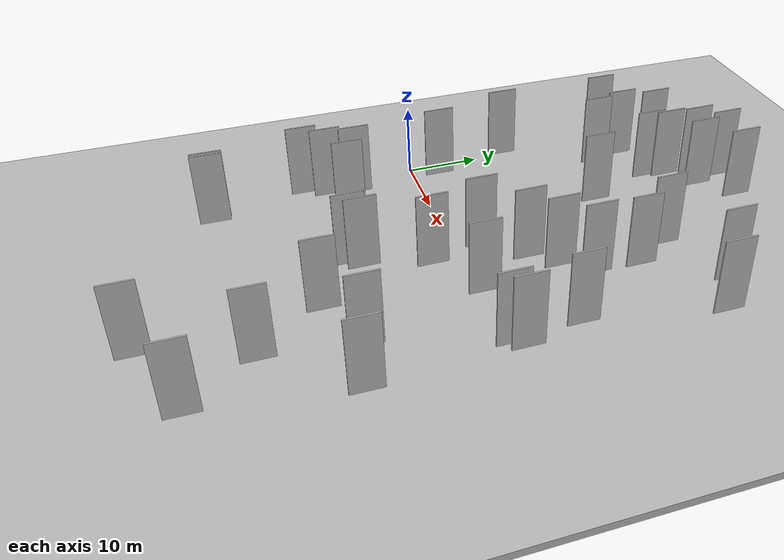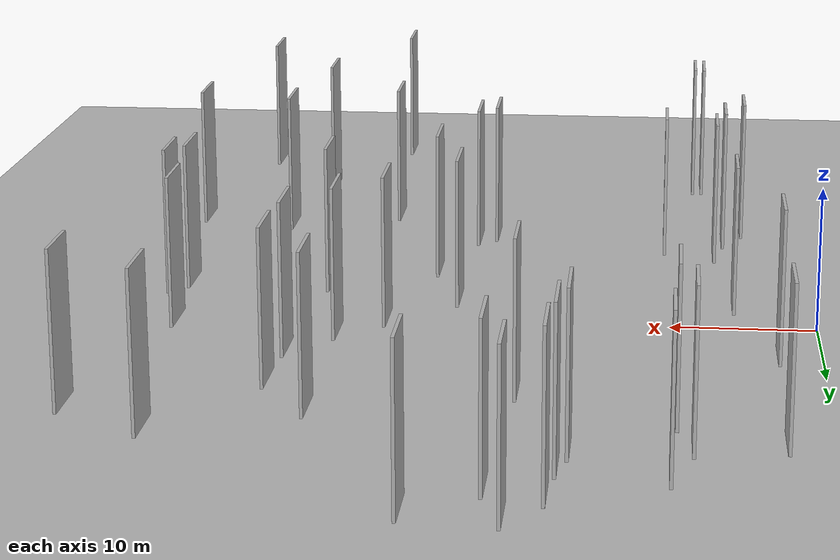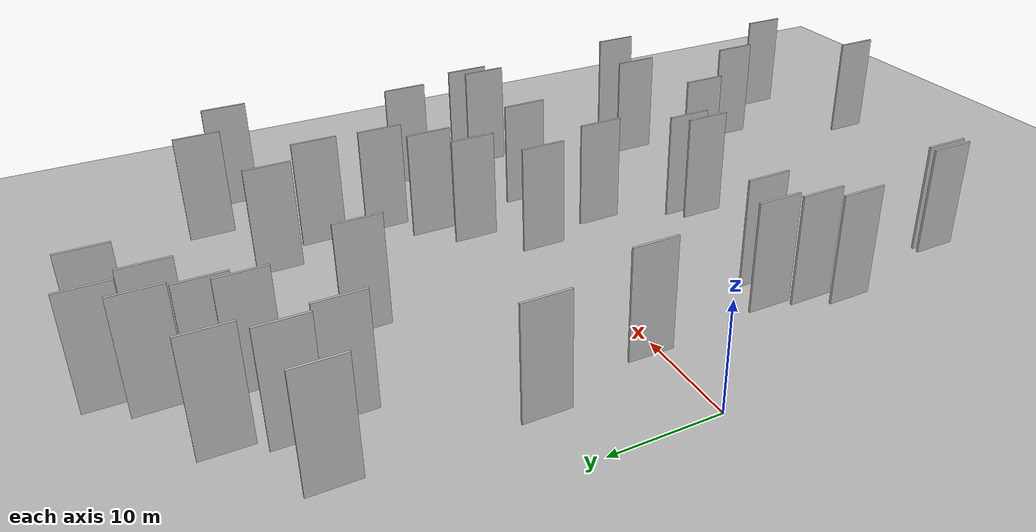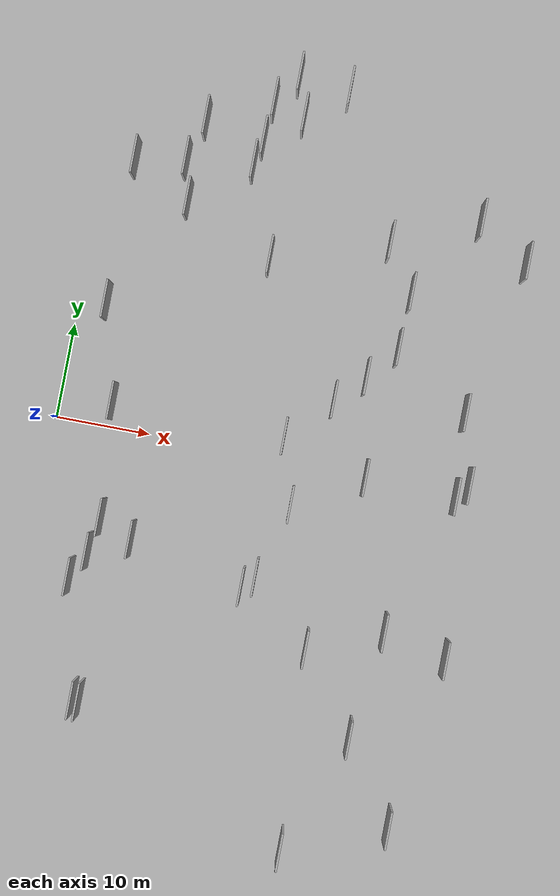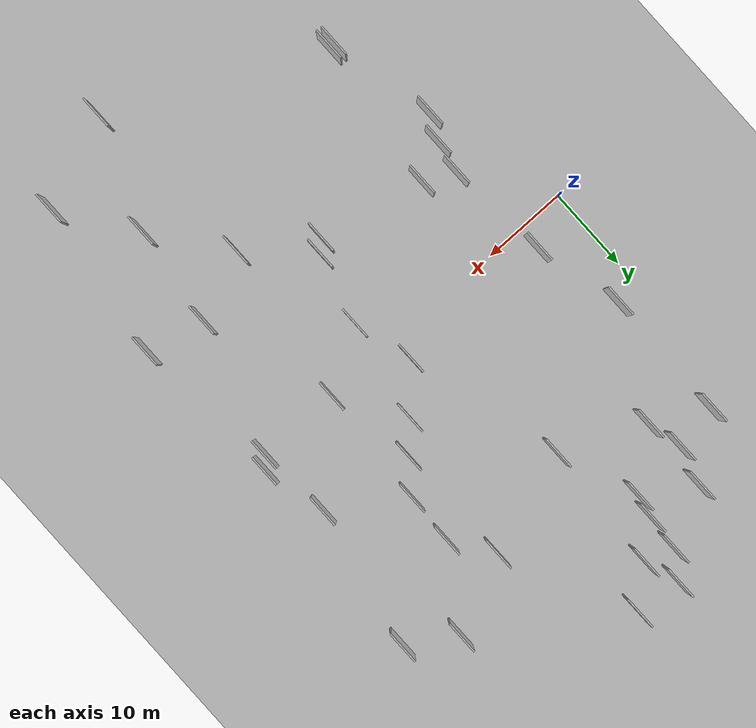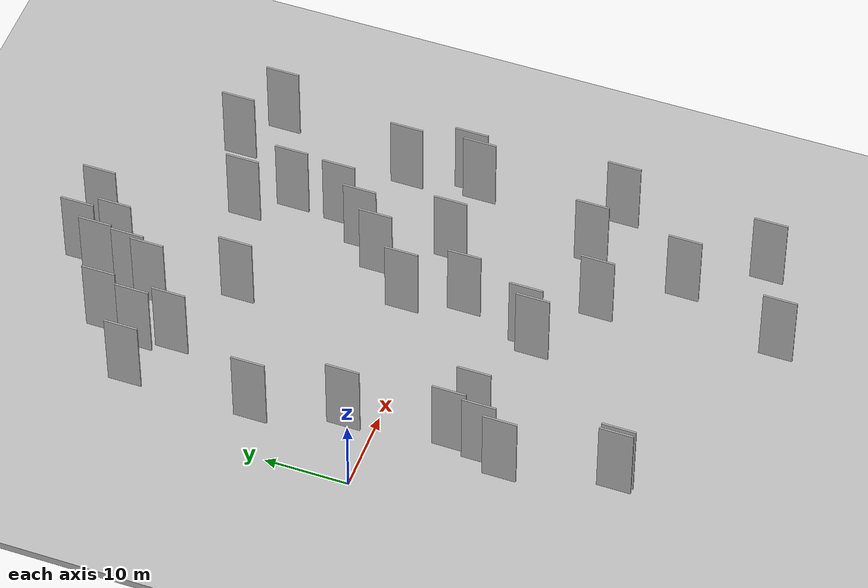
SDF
<?xml version="1.0" encoding="utf-8"?>

<sdf version="1.6">

   <world name="default">

      <gui fullscreen="0">

         <camera name="user_camera">

            <pose>-15 0 4.57585 0 0 0</pose>

            <view_controller>orbit</view_controller>

         </camera>

      </gui>

      <scene>

         <sky>

           <clouds>

             <speed>12</speed>

           </clouds>

         </sky>

         <ambient>0.4 0.4 0.4 1</ambient>

         <background>0.7 0.7 0.7 1</background>

         <shadows>1</shadows>

      </scene>

      <gravity>0 0 -9.8066</gravity>

      <magnetic_field>6e-06 2.3e-05 -4.2e-05</magnetic_field>

      <physics default="0" name="default_physics" type="ode">

         <ode>

            <solver>

               <type>quick</type>

               <iters>10</iters>

               <sor>1.0</sor>

               <use_dynamic_moi_rescaling>0</use_dynamic_moi_rescaling>

            </solver>

            <constraints>

               <cfm>0</cfm>

               <erp>0.2</erp>

               <contact_max_correcting_vel>100</contact_max_correcting_vel>

               <contact_surface_layer>0.001</contact_surface_layer>

            </constraints>

         </ode>

         <max_step_size>0.004</max_step_size>

         <real_time_factor>1</real_time_factor>

         <real_time_update_rate>250</real_time_update_rate>

      </physics>

      <light name="sun" type="directional">

         <cast_shadows>1</cast_shadows>

         <pose>0 0 10 0 0 0</pose>

         <diffuse>0.8 0.8 0.8 1</diffuse>

         <specular>0.2 0.2 0.2 1</specular>

         <attenuation>

            <range>1000</range>

            <constant>0.9</constant>

            <linear>0.01</linear>

            <quadratic>0.001</quadratic>

         </attenuation>

         <direction>-0.5 0.1 -0.9</direction>

      </light>

      <include>

         <name>ground_plane_1</name>

         <uri>model://HANNAS_ground_plane</uri>

         <pose>0 0 0  0 0 0</pose>

      </include>

      <include>

         <name>ground_plane_2</name>

         <uri>model://HANNAS_ground_plane</uri>

         <pose>100 0 0  0 0 0</pose>

      </include>

      <model name="HANNAS_wall_1">

         <static>1</static>

         <pose frame="">42.2858 8.4306 2.5 0.000000 0.000000 1.570796</pose>

         <link name="link">

            <pose frame="">0 0 5.00 0 0 0</pose>

            <collision name="collision">

               <geometry>

                  <box>

                     <size>4.00 0.2 10.00</size>

                  </box>

               </geometry>

               <max_contacts>10</max_contacts>

               <surface>

                  <contact>

                     <ode/>

                  </contact>

                  <bounce/>

                  <friction>

                     <torsional>

                        <ode/>

                     </torsional>

                     <ode/>

                  </friction>

               </surface>

            </collision>

            <visual name="visual">

               <cast_shadows>0</cast_shadows>

               <geometry>

                  <box>

                     <size>4.00 0.2 10.00</size>

                  </box>

               </geometry>

               <material>

                  <script>

                     <uri>model://HANNAS_wall/materials/scripts</uri>

                     <uri>model://HANNAS_wall/materials/textures</uri>

                     <name>vrc/HANNAS_wall</name>

                  </script>

               </material>

            </visual>

            <self_collide>0</self_collide>

            <enable_wind>0</enable_wind>

            <kinematic>0</kinematic>

         </link>

      </model>

      <model name="HANNAS_wall_2">

         <static>1</static>

         <pose frame="">9.9759 33.6062 2.5 0.000000 0.000000 1.570796</pose>

         <link name="link">

            <pose frame="">0 0 5.00 0 0 0</pose>

            <collision name="collision">

               <geometry>

                  <box>

                     <size>4.00 0.2 10.00</size>

                  </box>

               </geometry>

               <max_contacts>10</max_contacts>

               <surface>

                  <contact>

                     <ode/>

                  </contact>

                  <bounce/>

                  <friction>

                     <torsional>

                        <ode/>

                     </torsional>

                     <ode/>

                  </friction>

               </surface>

            </collision>

            <visual name="visual">

               <cast_shadows>0</cast_shadows>

               <geometry>

                  <box>

                     <size>4.00 0.2 10.00</size>

                  </box>

               </geometry>

               <material>

                  <script>

                     <uri>model://HANNAS_wall/materials/scripts</uri>

                     <uri>model://HANNAS_wall/materials/textures</uri>

                     <name>vrc/HANNAS_wall</name>

                  </script>

               </material>

            </visual>

            <self_collide>0</self_collide>

            <enable_wind>0</enable_wind>

            <kinematic>0</kinematic>

         </link>

      </model>

      <model name="HANNAS_wall_3">

         <static>1</static>

         <pose frame="">7.5965 -28.5167 2.5 0.000000 0.000000 1.570796</pose>

         <link name="link">

            <pose frame="">0 0 5.00 0 0 0</pose>

            <collision name="collision">

               <geometry>

                  <box>

                     <size>4.00 0.2 10.00</size>

                  </box>

               </geometry>

               <max_contacts>10</max_contacts>

               <surface>

                  <contact>

                     <ode/>

                  </contact>

                  <bounce/>

                  <friction>

                     <torsional>

                        <ode/>

                     </torsional>

                     <ode/>

                  </friction>

               </surface>

            </collision>

            <visual name="visual">

               <cast_shadows>0</cast_shadows>

               <geometry>

                  <box>

                     <size>4.00 0.2 10.00</size>

                  </box>

               </geometry>

               <material>

                  <script>

                     <uri>model://HANNAS_wall/materials/scripts</uri>

                     <uri>model://HANNAS_wall/materials/textures</uri>

                     <name>vrc/HANNAS_wall</name>

                  </script>

               </material>

            </visual>

            <self_collide>0</self_collide>

            <enable_wind>0</enable_wind>

            <kinematic>0</kinematic>

         </link>

      </model>

      <model name="HANNAS_wall_4">

         <static>1</static>

         <pose frame="">30.5016 -18.7992 2.5 0.000000 0.000000 1.570796</pose>

         <link name="link">

            <pose frame="">0 0 5.00 0 0 0</pose>

            <collision name="collision">

               <geometry>

                  <box>

                     <size>4.00 0.2 10.00</size>

                  </box>

               </geometry>

               <max_contacts>10</max_contacts>

               <surface>

                  <contact>

                     <ode/>

                  </contact>

                  <bounce/>

                  <friction>

                     <torsional>

                        <ode/>

                     </torsional>

                     <ode/>

                  </friction>

               </surface>

            </collision>

            <visual name="visual">

               <cast_shadows>0</cast_shadows>

               <geometry>

                  <box>

                     <size>4.00 0.2 10.00</size>

                  </box>

               </geometry>

               <material>

                  <script>

                     <uri>model://HANNAS_wall/materials/scripts</uri>

                     <uri>model://HANNAS_wall/materials/textures</uri>

                     <name>vrc/HANNAS_wall</name>

                  </script>

               </material>

            </visual>

            <self_collide>0</self_collide>

            <enable_wind>0</enable_wind>

            <kinematic>0</kinematic>

         </link>

      </model>

      <model name="HANNAS_wall_5">

         <static>1</static>

         <pose frame="">3.4285 28.2088 2.5 0.000000 0.000000 1.570796</pose>

         <link name="link">

            <pose frame="">0 0 5.00 0 0 0</pose>

            <collision name="collision">

               <geometry>

                  <box>

                     <size>4.00 0.2 10.00</size>

                  </box>

               </geometry>

               <max_contacts>10</max_contacts>

               <surface>

                  <contact>

                     <ode/>

                  </contact>

                  <bounce/>

                  <friction>

                     <torsional>

                        <ode/>

                     </torsional>

                     <ode/>

                  </friction>

               </surface>

            </collision>

            <visual name="visual">

               <cast_shadows>0</cast_shadows>

               <geometry>

                  <box>

                     <size>4.00 0.2 10.00</size>

                  </box>

               </geometry>

               <material>

                  <script>

                     <uri>model://HANNAS_wall/materials/scripts</uri>

                     <uri>model://HANNAS_wall/materials/textures</uri>

                     <name>vrc/HANNAS_wall</name>

                  </script>

               </material>

            </visual>

            <self_collide>0</self_collide>

            <enable_wind>0</enable_wind>

            <kinematic>0</kinematic>

         </link>

      </model>

      <model name="HANNAS_wall_6">

         <static>1</static>

         <pose frame="">16.2536 32.6822 2.5 0.000000 0.000000 1.570796</pose>

         <link name="link">

            <pose frame="">0 0 5.00 0 0 0</pose>

            <collision name="collision">

               <geometry>

                  <box>

                     <size>4.00 0.2 10.00</size>

                  </box>

               </geometry>

               <max_contacts>10</max_contacts>

               <surface>

                  <contact>

                     <ode/>

                  </contact>

                  <bounce/>

                  <friction>

                     <torsional>

                        <ode/>

                     </torsional>

                     <ode/>

                  </friction>

               </surface>

            </collision>

            <visual name="visual">

               <cast_shadows>0</cast_shadows>

               <geometry>

                  <box>

                     <size>4.00 0.2 10.00</size>

                  </box>

               </geometry>

               <material>

                  <script>

                     <uri>model://HANNAS_wall/materials/scripts</uri>

                     <uri>model://HANNAS_wall/materials/textures</uri>

                     <name>vrc/HANNAS_wall</name>

                  </script>

               </material>

            </visual>

            <self_collide>0</self_collide>

            <enable_wind>0</enable_wind>

            <kinematic>0</kinematic>

         </link>

      </model>

      <model name="HANNAS_wall_7">

         <static>1</static>

         <pose frame="">22.7090 -13.7084 2.5 0.000000 0.000000 1.570796</pose>

         <link name="link">

            <pose frame="">0 0 5.00 0 0 0</pose>

            <collision name="collision">

               <geometry>

                  <box>

                     <size>4.00 0.2 10.00</size>

                  </box>

               </geometry>

               <max_contacts>10</max_contacts>

               <surface>

                  <contact>

                     <ode/>

                  </contact>

                  <bounce/>

                  <friction>

                     <torsional>

                        <ode/>

                     </torsional>

                     <ode/>

                  </friction>

               </surface>

            </collision>

            <visual name="visual">

               <cast_shadows>0</cast_shadows>

               <geometry>

                  <box>

                     <size>4.00 0.2 10.00</size>

                  </box>

               </geometry>

               <material>

                  <script>

                     <uri>model://HANNAS_wall/materials/scripts</uri>

                     <uri>model://HANNAS_wall/materials/textures</uri>

                     <name>vrc/HANNAS_wall</name>

                  </script>

               </material>

            </visual>

            <self_collide>0</self_collide>

            <enable_wind>0</enable_wind>

            <kinematic>0</kinematic>

         </link>

      </model>

      <model name="HANNAS_wall_8">

         <static>1</static>

         <pose frame="">45.6253 25.0832 2.5 0.000000 0.000000 1.570796</pose>

         <link name="link">

            <pose frame="">0 0 5.00 0 0 0</pose>

            <collision name="collision">

               <geometry>

                  <box>

                     <size>4.00 0.2 10.00</size>

                  </box>

               </geometry>

               <max_contacts>10</max_contacts>

               <surface>

                  <contact>

                     <ode/>

                  </contact>

                  <bounce/>

                  <friction>

                     <torsional>

                        <ode/>

                     </torsional>

                     <ode/>

                  </friction>

               </surface>

            </collision>

            <visual name="visual">

               <cast_shadows>0</cast_shadows>

               <geometry>

                  <box>

                     <size>4.00 0.2 10.00</size>

                  </box>

               </geometry>

               <material>

                  <script>

                     <uri>model://HANNAS_wall/materials/scripts</uri>

                     <uri>model://HANNAS_wall/materials/textures</uri>

                     <name>vrc/HANNAS_wall</name>

                  </script>

               </material>

            </visual>

            <self_collide>0</self_collide>

            <enable_wind>0</enable_wind>

            <kinematic>0</kinematic>

         </link>

      </model>

      <model name="HANNAS_wall_9">

         <static>1</static>

         <pose frame="">15.6876 30.0707 2.5 0.000000 0.000000 1.570796</pose>

         <link name="link">

            <pose frame="">0 0 5.00 0 0 0</pose>

            <collision name="collision">

               <geometry>

                  <box>

                     <size>4.00 0.2 10.00</size>

                  </box>

               </geometry>

               <max_contacts>10</max_contacts>

               <surface>

                  <contact>

                     <ode/>

                  </contact>

                  <bounce/>

                  <friction>

                     <torsional>

                        <ode/>

                     </torsional>

                     <ode/>

                  </friction>

               </surface>

            </collision>

            <visual name="visual">

               <cast_shadows>0</cast_shadows>

               <geometry>

                  <box>

                     <size>4.00 0.2 10.00</size>

                  </box>

               </geometry>

               <material>

                  <script>

                     <uri>model://HANNAS_wall/materials/scripts</uri>

                     <uri>model://HANNAS_wall/materials/textures</uri>

                     <name>vrc/HANNAS_wall</name>

                  </script>

               </material>

            </visual>

            <self_collide>0</self_collide>

            <enable_wind>0</enable_wind>

            <kinematic>0</kinematic>

         </link>

      </model>

      <model name="HANNAS_wall_10">

         <static>1</static>

         <pose frame="">16.6272 36.7826 2.5 0.000000 0.000000 1.570796</pose>

         <link name="link">

            <pose frame="">0 0 5.00 0 0 0</pose>

            <collision name="collision">

               <geometry>

                  <box>

                     <size>4.00 0.2 10.00</size>

                  </box>

               </geometry>

               <max_contacts>10</max_contacts>

               <surface>

                  <contact>

                     <ode/>

                  </contact>

                  <bounce/>

                  <friction>

                     <torsional>

                        <ode/>

                     </torsional>

                     <ode/>

                  </friction>

               </surface>

            </collision>

            <visual name="visual">

               <cast_shadows>0</cast_shadows>

               <geometry>

                  <box>

                     <size>4.00 0.2 10.00</size>

                  </box>

               </geometry>

               <material>

                  <script>

                     <uri>model://HANNAS_wall/materials/scripts</uri>

                     <uri>model://HANNAS_wall/materials/textures</uri>

                     <name>vrc/HANNAS_wall</name>

                  </script>

               </material>

            </visual>

            <self_collide>0</self_collide>

            <enable_wind>0</enable_wind>

            <kinematic>0</kinematic>

         </link>

      </model>

      <model name="HANNAS_wall_11">

         <static>1</static>

         <pose frame="">42.9296 -0.3088 2.5 0.000000 0.000000 1.570796</pose>

         <link name="link">

            <pose frame="">0 0 5.00 0 0 0</pose>

            <collision name="collision">

               <geometry>

                  <box>

                     <size>4.00 0.2 10.00</size>

                  </box>

               </geometry>

               <max_contacts>10</max_contacts>

               <surface>

                  <contact>

                     <ode/>

                  </contact>

                  <bounce/>

                  <friction>

                     <torsional>

                        <ode/>

                     </torsional>

                     <ode/>

                  </friction>

               </surface>

            </collision>

            <visual name="visual">

               <cast_shadows>0</cast_shadows>

               <geometry>

                  <box>

                     <size>4.00 0.2 10.00</size>

                  </box>

               </geometry>

               <material>

                  <script>

                     <uri>model://HANNAS_wall/materials/scripts</uri>

                     <uri>model://HANNAS_wall/materials/textures</uri>

                     <name>vrc/HANNAS_wall</name>

                  </script>

               </material>

            </visual>

            <self_collide>0</self_collide>

            <enable_wind>0</enable_wind>

            <kinematic>0</kinematic>

         </link>

      </model>

      <model name="HANNAS_wall_12">

         <static>1</static>

         <pose frame="">24.1457 39.3764 2.5 0.000000 0.000000 1.570796</pose>

         <link name="link">

            <pose frame="">0 0 5.00 0 0 0</pose>

            <collision name="collision">

               <geometry>

                  <box>

                     <size>4.00 0.2 10.00</size>

                  </box>

               </geometry>

               <max_contacts>10</max_contacts>

               <surface>

                  <contact>

                     <ode/>

                  </contact>

                  <bounce/>

                  <friction>

                     <torsional>

                        <ode/>

                     </torsional>

                     <ode/>

                  </friction>

               </surface>

            </collision>

            <visual name="visual">

               <cast_shadows>0</cast_shadows>

               <geometry>

                  <box>

                     <size>4.00 0.2 10.00</size>

                  </box>

               </geometry>

               <material>

                  <script>

                     <uri>model://HANNAS_wall/materials/scripts</uri>

                     <uri>model://HANNAS_wall/materials/textures</uri>

                     <name>vrc/HANNAS_wall</name>

                  </script>

               </material>

            </visual>

            <self_collide>0</self_collide>

            <enable_wind>0</enable_wind>

            <kinematic>0</kinematic>

         </link>

      </model>

      <model name="HANNAS_wall_13">

         <static>1</static>

         <pose frame="">19.9792 35.7818 2.5 0.000000 0.000000 1.570796</pose>

         <link name="link">

            <pose frame="">0 0 5.00 0 0 0</pose>

            <collision name="collision">

               <geometry>

                  <box>

                     <size>4.00 0.2 10.00</size>

                  </box>

               </geometry>

               <max_contacts>10</max_contacts>

               <surface>

                  <contact>

                     <ode/>

                  </contact>

                  <bounce/>

                  <friction>

                     <torsional>

                        <ode/>

                     </torsional>

                     <ode/>

                  </friction>

               </surface>

            </collision>

            <visual name="visual">

               <cast_shadows>0</cast_shadows>

               <geometry>

                  <box>

                     <size>4.00 0.2 10.00</size>

                  </box>

               </geometry>

               <material>

                  <script>

                     <uri>model://HANNAS_wall/materials/scripts</uri>

                     <uri>model://HANNAS_wall/materials/textures</uri>

                     <name>vrc/HANNAS_wall</name>

                  </script>

               </material>

            </visual>

            <self_collide>0</self_collide>

            <enable_wind>0</enable_wind>

            <kinematic>0</kinematic>

         </link>

      </model>

      <model name="HANNAS_wall_14">

         <static>1</static>

         <pose frame="">6.9303 -9.3802 2.5 0.000000 0.000000 1.570796</pose>

         <link name="link">

            <pose frame="">0 0 5.00 0 0 0</pose>

            <collision name="collision">

               <geometry>

                  <box>

                     <size>4.00 0.2 10.00</size>

                  </box>

               </geometry>

               <max_contacts>10</max_contacts>

               <surface>

                  <contact>

                     <ode/>

                  </contact>

                  <bounce/>

                  <friction>

                     <torsional>

                        <ode/>

                     </torsional>

                     <ode/>

                  </friction>

               </surface>

            </collision>

            <visual name="visual">

               <cast_shadows>0</cast_shadows>

               <geometry>

                  <box>

                     <size>4.00 0.2 10.00</size>

                  </box>

               </geometry>

               <material>

                  <script>

                     <uri>model://HANNAS_wall/materials/scripts</uri>

                     <uri>model://HANNAS_wall/materials/textures</uri>

                     <name>vrc/HANNAS_wall</name>

                  </script>

               </material>

            </visual>

            <self_collide>0</self_collide>

            <enable_wind>0</enable_wind>

            <kinematic>0</kinematic>

         </link>

      </model>

      <model name="HANNAS_wall_15">

         <static>1</static>

         <pose frame="">34.4124 19.6951 2.5 0.000000 0.000000 1.570796</pose>

         <link name="link">

            <pose frame="">0 0 5.00 0 0 0</pose>

            <collision name="collision">

               <geometry>

                  <box>

                     <size>4.00 0.2 10.00</size>

                  </box>

               </geometry>

               <max_contacts>10</max_contacts>

               <surface>

                  <contact>

                     <ode/>

                  </contact>

                  <bounce/>

                  <friction>

                     <torsional>

                        <ode/>

                     </torsional>

                     <ode/>

                  </friction>

               </surface>

            </collision>

            <visual name="visual">

               <cast_shadows>0</cast_shadows>

               <geometry>

                  <box>

                     <size>4.00 0.2 10.00</size>

                  </box>

               </geometry>

               <material>

                  <script>

                     <uri>model://HANNAS_wall/materials/scripts</uri>

                     <uri>model://HANNAS_wall/materials/textures</uri>

                     <name>vrc/HANNAS_wall</name>

                  </script>

               </material>

            </visual>

            <self_collide>0</self_collide>

            <enable_wind>0</enable_wind>

            <kinematic>0</kinematic>

         </link>

      </model>

      <model name="HANNAS_wall_16">

         <static>1</static>

         <pose frame="">10.4565 -11.0433 2.5 0.000000 0.000000 1.570796</pose>

         <link name="link">

            <pose frame="">0 0 5.00 0 0 0</pose>

            <collision name="collision">

               <geometry>

                  <box>

                     <size>4.00 0.2 10.00</size>

                  </box>

               </geometry>

               <max_contacts>10</max_contacts>

               <surface>

                  <contact>

                     <ode/>

                  </contact>

                  <bounce/>

                  <friction>

                     <torsional>

                        <ode/>

                     </torsional>

                     <ode/>

                  </friction>

               </surface>

            </collision>

            <visual name="visual">

               <cast_shadows>0</cast_shadows>

               <geometry>

                  <box>

                     <size>4.00 0.2 10.00</size>

                  </box>

               </geometry>

               <material>

                  <script>

                     <uri>model://HANNAS_wall/materials/scripts</uri>

                     <uri>model://HANNAS_wall/materials/textures</uri>

                     <name>vrc/HANNAS_wall</name>

                  </script>

               </material>

            </visual>

            <self_collide>0</self_collide>

            <enable_wind>0</enable_wind>

            <kinematic>0</kinematic>

         </link>

      </model>

      <model name="HANNAS_wall_17">

         <static>1</static>

         <pose frame="">31.4384 10.2214 2.5 0.000000 0.000000 1.570796</pose>

         <link name="link">

            <pose frame="">0 0 5.00 0 0 0</pose>

            <collision name="collision">

               <geometry>

                  <box>

                     <size>4.00 0.2 10.00</size>

                  </box>

               </geometry>

               <max_contacts>10</max_contacts>

               <surface>

                  <contact>

                     <ode/>

                  </contact>

                  <bounce/>

                  <friction>

                     <torsional>

                        <ode/>

                     </torsional>

                     <ode/>

                  </friction>

               </surface>

            </collision>

            <visual name="visual">

               <cast_shadows>0</cast_shadows>

               <geometry>

                  <box>

                     <size>4.00 0.2 10.00</size>

                  </box>

               </geometry>

               <material>

                  <script>

                     <uri>model://HANNAS_wall/materials/scripts</uri>

                     <uri>model://HANNAS_wall/materials/textures</uri>

                     <name>vrc/HANNAS_wall</name>

                  </script>

               </material>

            </visual>

            <self_collide>0</self_collide>

            <enable_wind>0</enable_wind>

            <kinematic>0</kinematic>

         </link>

      </model>

      <model name="HANNAS_wall_18">

         <static>1</static>

         <pose frame="">34.1637 13.8082 2.5 0.000000 0.000000 1.570796</pose>

         <link name="link">

            <pose frame="">0 0 5.00 0 0 0</pose>

            <collision name="collision">

               <geometry>

                  <box>

                     <size>4.00 0.2 10.00</size>

                  </box>

               </geometry>

               <max_contacts>10</max_contacts>

               <surface>

                  <contact>

                     <ode/>

                  </contact>

                  <bounce/>

                  <friction>

                     <torsional>

                        <ode/>

                     </torsional>

                     <ode/>

                  </friction>

               </surface>

            </collision>

            <visual name="visual">

               <cast_shadows>0</cast_shadows>

               <geometry>

                  <box>

                     <size>4.00 0.2 10.00</size>

                  </box>

               </geometry>

               <material>

                  <script>

                     <uri>model://HANNAS_wall/materials/scripts</uri>

                     <uri>model://HANNAS_wall/materials/textures</uri>

                     <name>vrc/HANNAS_wall</name>

                  </script>

               </material>

            </visual>

            <self_collide>0</self_collide>

            <enable_wind>0</enable_wind>

            <kinematic>0</kinematic>

         </link>

      </model>

      <model name="HANNAS_wall_19">

         <static>1</static>

         <pose frame="">4.8445 -16.0190 2.5 0.000000 0.000000 1.570796</pose>

         <link name="link">

            <pose frame="">0 0 5.00 0 0 0</pose>

            <collision name="collision">

               <geometry>

                  <box>

                     <size>4.00 0.2 10.00</size>

                  </box>

               </geometry>

               <max_contacts>10</max_contacts>

               <surface>

                  <contact>

                     <ode/>

                  </contact>

                  <bounce/>

                  <friction>

                     <torsional>

                        <ode/>

                     </torsional>

                     <ode/>

                  </friction>

               </surface>

            </collision>

            <visual name="visual">

               <cast_shadows>0</cast_shadows>

               <geometry>

                  <box>

                     <size>4.00 0.2 10.00</size>

                  </box>

               </geometry>

               <material>

                  <script>

                     <uri>model://HANNAS_wall/materials/scripts</uri>

                     <uri>model://HANNAS_wall/materials/textures</uri>

                     <name>vrc/HANNAS_wall</name>

                  </script>

               </material>

            </visual>

            <self_collide>0</self_collide>

            <enable_wind>0</enable_wind>

            <kinematic>0</kinematic>

         </link>

      </model>

      <model name="HANNAS_wall_20">

         <static>1</static>

         <pose frame="">23.9570 -12.4858 2.5 0.000000 0.000000 1.570796</pose>

         <link name="link">

            <pose frame="">0 0 5.00 0 0 0</pose>

            <collision name="collision">

               <geometry>

                  <box>

                     <size>4.00 0.2 10.00</size>

                  </box>

               </geometry>

               <max_contacts>10</max_contacts>

               <surface>

                  <contact>

                     <ode/>

                  </contact>

                  <bounce/>

                  <friction>

                     <torsional>

                        <ode/>

                     </torsional>

                     <ode/>

                  </friction>

               </surface>

            </collision>

            <visual name="visual">

               <cast_shadows>0</cast_shadows>

               <geometry>

                  <box>

                     <size>4.00 0.2 10.00</size>

                  </box>

               </geometry>

               <material>

                  <script>

                     <uri>model://HANNAS_wall/materials/scripts</uri>

                     <uri>model://HANNAS_wall/materials/textures</uri>

                     <name>vrc/HANNAS_wall</name>

                  </script>

               </material>

            </visual>

            <self_collide>0</self_collide>

            <enable_wind>0</enable_wind>

            <kinematic>0</kinematic>

         </link>

      </model>

      <model name="HANNAS_wall_21">

         <static>1</static>

         <pose frame="">6.2491 -13.1037 2.5 0.000000 0.000000 1.570796</pose>

         <link name="link">

            <pose frame="">0 0 5.00 0 0 0</pose>

            <collision name="collision">

               <geometry>

                  <box>

                     <size>4.00 0.2 10.00</size>

                  </box>

               </geometry>

               <max_contacts>10</max_contacts>

               <surface>

                  <contact>

                     <ode/>

                  </contact>

                  <bounce/>

                  <friction>

                     <torsional>

                        <ode/>

                     </torsional>

                     <ode/>

                  </friction>

               </surface>

            </collision>

            <visual name="visual">

               <cast_shadows>0</cast_shadows>

               <geometry>

                  <box>

                     <size>4.00 0.2 10.00</size>

                  </box>

               </geometry>

               <material>

                  <script>

                     <uri>model://HANNAS_wall/materials/scripts</uri>

                     <uri>model://HANNAS_wall/materials/textures</uri>

                     <name>vrc/HANNAS_wall</name>

                  </script>

               </material>

            </visual>

            <self_collide>0</self_collide>

            <enable_wind>0</enable_wind>

            <kinematic>0</kinematic>

         </link>

      </model>

      <model name="HANNAS_wall_22">

         <static>1</static>

         <pose frame="">8.2654 -28.5808 2.5 0.000000 0.000000 1.570796</pose>

         <link name="link">

            <pose frame="">0 0 5.00 0 0 0</pose>

            <collision name="collision">

               <geometry>

                  <box>

                     <size>4.00 0.2 10.00</size>

                  </box>

               </geometry>

               <max_contacts>10</max_contacts>

               <surface>

                  <contact>

                     <ode/>

                  </contact>

                  <bounce/>

                  <friction>

                     <torsional>

                        <ode/>

                     </torsional>

                     <ode/>

                  </friction>

               </surface>

            </collision>

            <visual name="visual">

               <cast_shadows>0</cast_shadows>

               <geometry>

                  <box>

                     <size>4.00 0.2 10.00</size>

                  </box>

               </geometry>

               <material>

                  <script>

                     <uri>model://HANNAS_wall/materials/scripts</uri>

                     <uri>model://HANNAS_wall/materials/textures</uri>

                     <name>vrc/HANNAS_wall</name>

                  </script>

               </material>

            </visual>

            <self_collide>0</self_collide>

            <enable_wind>0</enable_wind>

            <kinematic>0</kinematic>

         </link>

      </model>

      <model name="HANNAS_wall_23">

         <static>1</static>

         <pose frame="">19.1865 20.6902 2.5 0.000000 0.000000 1.570796</pose>

         <link name="link">

            <pose frame="">0 0 5.00 0 0 0</pose>

            <collision name="collision">

               <geometry>

                  <box>

                     <size>4.00 0.2 10.00</size>

                  </box>

               </geometry>

               <max_contacts>10</max_contacts>

               <surface>

                  <contact>

                     <ode/>

                  </contact>

                  <bounce/>

                  <friction>

                     <torsional>

                        <ode/>

                     </torsional>

                     <ode/>

                  </friction>

               </surface>

            </collision>

            <visual name="visual">

               <cast_shadows>0</cast_shadows>

               <geometry>

                  <box>

                     <size>4.00 0.2 10.00</size>

                  </box>

               </geometry>

               <material>

                  <script>

                     <uri>model://HANNAS_wall/materials/scripts</uri>

                     <uri>model://HANNAS_wall/materials/textures</uri>

                     <name>vrc/HANNAS_wall</name>

                  </script>

               </material>

            </visual>

            <self_collide>0</self_collide>

            <enable_wind>0</enable_wind>

            <kinematic>0</kinematic>

         </link>

      </model>

      <model name="HANNAS_wall_24">

         <static>1</static>

         <pose frame="">40.1750 28.5296 2.5 0.000000 0.000000 1.570796</pose>

         <link name="link">

            <pose frame="">0 0 5.00 0 0 0</pose>

            <collision name="collision">

               <geometry>

                  <box>

                     <size>4.00 0.2 10.00</size>

                  </box>

               </geometry>

               <max_contacts>10</max_contacts>

               <surface>

                  <contact>

                     <ode/>

                  </contact>

                  <bounce/>

                  <friction>

                     <torsional>

                        <ode/>

                     </torsional>

                     <ode/>

                  </friction>

               </surface>

            </collision>

            <visual name="visual">

               <cast_shadows>0</cast_shadows>

               <geometry>

                  <box>

                     <size>4.00 0.2 10.00</size>

                  </box>

               </geometry>

               <material>

                  <script>

                     <uri>model://HANNAS_wall/materials/scripts</uri>

                     <uri>model://HANNAS_wall/materials/textures</uri>

                     <name>vrc/HANNAS_wall</name>

                  </script>

               </material>

            </visual>

            <self_collide>0</self_collide>

            <enable_wind>0</enable_wind>

            <kinematic>0</kinematic>

         </link>

      </model>

      <model name="HANNAS_wall_25">

         <static>1</static>

         <pose frame="">8.7205 29.0586 2.5 0.000000 0.000000 1.570796</pose>

         <link name="link">

            <pose frame="">0 0 5.00 0 0 0</pose>

            <collision name="collision">

               <geometry>

                  <box>

                     <size>4.00 0.2 10.00</size>

                  </box>

               </geometry>

               <max_contacts>10</max_contacts>

               <surface>

                  <contact>

                     <ode/>

                  </contact>

                  <bounce/>

                  <friction>

                     <torsional>

                        <ode/>

                     </torsional>

                     <ode/>

                  </friction>

               </surface>

            </collision>

            <visual name="visual">

               <cast_shadows>0</cast_shadows>

               <geometry>

                  <box>

                     <size>4.00 0.2 10.00</size>

                  </box>

               </geometry>

               <material>

                  <script>

                     <uri>model://HANNAS_wall/materials/scripts</uri>

                     <uri>model://HANNAS_wall/materials/textures</uri>

                     <name>vrc/HANNAS_wall</name>

                  </script>

               </material>

            </visual>

            <self_collide>0</self_collide>

            <enable_wind>0</enable_wind>

            <kinematic>0</kinematic>

         </link>

      </model>

      <model name="HANNAS_wall_26">

         <static>1</static>

         <pose frame="">28.5547 7.2209 2.5 0.000000 0.000000 1.570796</pose>

         <link name="link">

            <pose frame="">0 0 5.00 0 0 0</pose>

            <collision name="collision">

               <geometry>

                  <box>

                     <size>4.00 0.2 10.00</size>

                  </box>

               </geometry>

               <max_contacts>10</max_contacts>

               <surface>

                  <contact>

                     <ode/>

                  </contact>

                  <bounce/>

                  <friction>

                     <torsional>

                        <ode/>

                     </torsional>

                     <ode/>

                  </friction>

               </surface>

            </collision>

            <visual name="visual">

               <cast_shadows>0</cast_shadows>

               <geometry>

                  <box>

                     <size>4.00 0.2 10.00</size>

                  </box>

               </geometry>

               <material>

                  <script>

                     <uri>model://HANNAS_wall/materials/scripts</uri>

                     <uri>model://HANNAS_wall/materials/textures</uri>

                     <name>vrc/HANNAS_wall</name>

                  </script>

               </material>

            </visual>

            <self_collide>0</self_collide>

            <enable_wind>0</enable_wind>

            <kinematic>0</kinematic>

         </link>

      </model>

      <model name="HANNAS_wall_27">

         <static>1</static>

         <pose frame="">42.4733 -35.5248 2.5 0.000000 0.000000 1.570796</pose>

         <link name="link">

            <pose frame="">0 0 5.00 0 0 0</pose>

            <collision name="collision">

               <geometry>

                  <box>

                     <size>4.00 0.2 10.00</size>

                  </box>

               </geometry>

               <max_contacts>10</max_contacts>

               <surface>

                  <contact>

                     <ode/>

                  </contact>

                  <bounce/>

                  <friction>

                     <torsional>

                        <ode/>

                     </torsional>

                     <ode/>

                  </friction>

               </surface>

            </collision>

            <visual name="visual">

               <cast_shadows>0</cast_shadows>

               <geometry>

                  <box>

                     <size>4.00 0.2 10.00</size>

                  </box>

               </geometry>

               <material>

                  <script>

                     <uri>model://HANNAS_wall/materials/scripts</uri>

                     <uri>model://HANNAS_wall/materials/textures</uri>

                     <name>vrc/HANNAS_wall</name>

                  </script>

               </material>

            </visual>

            <self_collide>0</self_collide>

            <enable_wind>0</enable_wind>

            <kinematic>0</kinematic>

         </link>

      </model>

      <model name="HANNAS_wall_28">

         <static>1</static>

         <pose frame="">33.3011 -0.1617 2.5 0.000000 0.000000 1.570796</pose>

         <link name="link">

            <pose frame="">0 0 5.00 0 0 0</pose>

            <collision name="collision">

               <geometry>

                  <box>

                     <size>4.00 0.2 10.00</size>

                  </box>

               </geometry>

               <max_contacts>10</max_contacts>

               <surface>

                  <contact>

                     <ode/>

                  </contact>

                  <bounce/>

                  <friction>

                     <torsional>

                        <ode/>

                     </torsional>

                     <ode/>

                  </friction>

               </surface>

            </collision>

            <visual name="visual">

               <cast_shadows>0</cast_shadows>

               <geometry>

                  <box>

                     <size>4.00 0.2 10.00</size>

                  </box>

               </geometry>

               <material>

                  <script>

                     <uri>model://HANNAS_wall/materials/scripts</uri>

                     <uri>model://HANNAS_wall/materials/textures</uri>

                     <name>vrc/HANNAS_wall</name>

                  </script>

               </material>

            </visual>

            <self_collide>0</self_collide>

            <enable_wind>0</enable_wind>

            <kinematic>0</kinematic>

         </link>

      </model>

      <model name="HANNAS_wall_29">

         <static>1</static>

         <pose frame="">18.7298 39.8571 2.5 0.000000 0.000000 1.570796</pose>

         <link name="link">

            <pose frame="">0 0 5.00 0 0 0</pose>

            <collision name="collision">

               <geometry>

                  <box>

                     <size>4.00 0.2 10.00</size>

                  </box>

               </geometry>

               <max_contacts>10</max_contacts>

               <surface>

                  <contact>

                     <ode/>

                  </contact>

                  <bounce/>

                  <friction>

                     <torsional>

                        <ode/>

                     </torsional>

                     <ode/>

                  </friction>

               </surface>

            </collision>

            <visual name="visual">

               <cast_shadows>0</cast_shadows>

               <geometry>

                  <box>

                     <size>4.00 0.2 10.00</size>

                  </box>

               </geometry>

               <material>

                  <script>

                     <uri>model://HANNAS_wall/materials/scripts</uri>

                     <uri>model://HANNAS_wall/materials/textures</uri>

                     <name>vrc/HANNAS_wall</name>

                  </script>

               </material>

            </visual>

            <self_collide>0</self_collide>

            <enable_wind>0</enable_wind>

            <kinematic>0</kinematic>

         </link>

      </model>

      <model name="HANNAS_wall_30">

         <static>1</static>

         <pose frame="">44.0648 1.0657 2.5 0.000000 0.000000 1.570796</pose>

         <link name="link">

            <pose frame="">0 0 5.00 0 0 0</pose>

            <collision name="collision">

               <geometry>

                  <box>

                     <size>4.00 0.2 10.00</size>

                  </box>

               </geometry>

               <max_contacts>10</max_contacts>

               <surface>

                  <contact>

                     <ode/>

                  </contact>

                  <bounce/>

                  <friction>

                     <torsional>

                        <ode/>

                     </torsional>

                     <ode/>

                  </friction>

               </surface>

            </collision>

            <visual name="visual">

               <cast_shadows>0</cast_shadows>

               <geometry>

                  <box>

                     <size>4.00 0.2 10.00</size>

                  </box>

               </geometry>

               <material>

                  <script>

                     <uri>model://HANNAS_wall/materials/scripts</uri>

                     <uri>model://HANNAS_wall/materials/textures</uri>

                     <name>vrc/HANNAS_wall</name>

                  </script>

               </material>

            </visual>

            <self_collide>0</self_collide>

            <enable_wind>0</enable_wind>

            <kinematic>0</kinematic>

         </link>

      </model>

      <model name="HANNAS_wall_31">

         <static>1</static>

         <pose frame="">31.8221 -39.8488 2.5 0.000000 0.000000 1.570796</pose>

         <link name="link">

            <pose frame="">0 0 5.00 0 0 0</pose>

            <collision name="collision">

               <geometry>

                  <box>

                     <size>4.00 0.2 10.00</size>

                  </box>

               </geometry>

               <max_contacts>10</max_contacts>

               <surface>

                  <contact>

                     <ode/>

                  </contact>

                  <bounce/>

                  <friction>

                     <torsional>

                        <ode/>

                     </torsional>

                     <ode/>

                  </friction>

               </surface>

            </collision>

            <visual name="visual">

               <cast_shadows>0</cast_shadows>

               <geometry>

                  <box>

                     <size>4.00 0.2 10.00</size>

                  </box>

               </geometry>

               <material>

                  <script>

                     <uri>model://HANNAS_wall/materials/scripts</uri>

                     <uri>model://HANNAS_wall/materials/textures</uri>

                     <name>vrc/HANNAS_wall</name>

                  </script>

               </material>

            </visual>

            <self_collide>0</self_collide>

            <enable_wind>0</enable_wind>

            <kinematic>0</kinematic>

         </link>

      </model>

      <model name="HANNAS_wall_32">

         <static>1</static>

         <pose frame="">24.1970 2.5009 2.5 0.000000 0.000000 1.570796</pose>

         <link name="link">

            <pose frame="">0 0 5.00 0 0 0</pose>

            <collision name="collision">

               <geometry>

                  <box>

                     <size>4.00 0.2 10.00</size>

                  </box>

               </geometry>

               <max_contacts>10</max_contacts>

               <surface>

                  <contact>

                     <ode/>

                  </contact>

                  <bounce/>

                  <friction>

                     <torsional>

                        <ode/>

                     </torsional>

                     <ode/>

                  </friction>

               </surface>

            </collision>

            <visual name="visual">

               <cast_shadows>0</cast_shadows>

               <geometry>

                  <box>

                     <size>4.00 0.2 10.00</size>

                  </box>

               </geometry>

               <material>

                  <script>

                     <uri>model://HANNAS_wall/materials/scripts</uri>

                     <uri>model://HANNAS_wall/materials/textures</uri>

                     <name>vrc/HANNAS_wall</name>

                  </script>

               </material>

            </visual>

            <self_collide>0</self_collide>

            <enable_wind>0</enable_wind>

            <kinematic>0</kinematic>

         </link>

      </model>

      <model name="HANNAS_wall_33">

         <static>1</static>

         <pose frame="">5.8471 2.7535 2.5 0.000000 0.000000 1.570796</pose>

         <link name="link">

            <pose frame="">0 0 5.00 0 0 0</pose>

            <collision name="collision">

               <geometry>

                  <box>

                     <size>4.00 0.2 10.00</size>

                  </box>

               </geometry>

               <max_contacts>10</max_contacts>

               <surface>

                  <contact>

                     <ode/>

                  </contact>

                  <bounce/>

                  <friction>

                     <torsional>

                        <ode/>

                     </torsional>

                     <ode/>

                  </friction>

               </surface>

            </collision>

            <visual name="visual">

               <cast_shadows>0</cast_shadows>

               <geometry>

                  <box>

                     <size>4.00 0.2 10.00</size>

                  </box>

               </geometry>

               <material>

                  <script>

                     <uri>model://HANNAS_wall/materials/scripts</uri>

                     <uri>model://HANNAS_wall/materials/textures</uri>

                     <name>vrc/HANNAS_wall</name>

                  </script>

               </material>

            </visual>

            <self_collide>0</self_collide>

            <enable_wind>0</enable_wind>

            <kinematic>0</kinematic>

         </link>

      </model>

      <model name="HANNAS_wall_34">

         <static>1</static>

         <pose frame="">3.2713 12.9604 2.5 0.000000 0.000000 1.570796</pose>

         <link name="link">

            <pose frame="">0 0 5.00 0 0 0</pose>

            <collision name="collision">

               <geometry>

                  <box>

                     <size>4.00 0.2 10.00</size>

                  </box>

               </geometry>

               <max_contacts>10</max_contacts>

               <surface>

                  <contact>

                     <ode/>

                  </contact>

                  <bounce/>

                  <friction>

                     <torsional>

                        <ode/>

                     </torsional>

                     <ode/>

                  </friction>

               </surface>

            </collision>

            <visual name="visual">

               <cast_shadows>0</cast_shadows>

               <geometry>

                  <box>

                     <size>4.00 0.2 10.00</size>

                  </box>

               </geometry>

               <material>

                  <script>

                     <uri>model://HANNAS_wall/materials/scripts</uri>

                     <uri>model://HANNAS_wall/materials/textures</uri>

                     <name>vrc/HANNAS_wall</name>

                  </script>

               </material>

            </visual>

            <self_collide>0</self_collide>

            <enable_wind>0</enable_wind>

            <kinematic>0</kinematic>

         </link>

      </model>

      <model name="HANNAS_wall_35">

         <static>1</static>

         <pose frame="">26.1697 -4.3527 2.5 0.000000 0.000000 1.570796</pose>

         <link name="link">

            <pose frame="">0 0 5.00 0 0 0</pose>

            <collision name="collision">

               <geometry>

                  <box>

                     <size>4.00 0.2 10.00</size>

                  </box>

               </geometry>

               <max_contacts>10</max_contacts>

               <surface>

                  <contact>

                     <ode/>

                  </contact>

                  <bounce/>

                  <friction>

                     <torsional>

                        <ode/>

                     </torsional>

                     <ode/>

                  </friction>

               </surface>

            </collision>

            <visual name="visual">

               <cast_shadows>0</cast_shadows>

               <geometry>

                  <box>

                     <size>4.00 0.2 10.00</size>

                  </box>

               </geometry>

               <material>

                  <script>

                     <uri>model://HANNAS_wall/materials/scripts</uri>

                     <uri>model://HANNAS_wall/materials/textures</uri>

                     <name>vrc/HANNAS_wall</name>

                  </script>

               </material>

            </visual>

            <self_collide>0</self_collide>

            <enable_wind>0</enable_wind>

            <kinematic>0</kinematic>

         </link>

      </model>

      <model name="HANNAS_wall_36">

         <static>1</static>

         <pose frame="">36.7174 -27.1547 2.5 0.000000 0.000000 1.570796</pose>

         <link name="link">

            <pose frame="">0 0 5.00 0 0 0</pose>

            <collision name="collision">

               <geometry>

                  <box>

                     <size>4.00 0.2 10.00</size>

                  </box>

               </geometry>

               <max_contacts>10</max_contacts>

               <surface>

                  <contact>

                     <ode/>

                  </contact>

                  <bounce/>

                  <friction>

                     <torsional>

                        <ode/>

                     </torsional>

                     <ode/>

                  </friction>

               </surface>

            </collision>

            <visual name="visual">

               <cast_shadows>0</cast_shadows>

               <geometry>

                  <box>

                     <size>4.00 0.2 10.00</size>

                  </box>

               </geometry>

               <material>

                  <script>

                     <uri>model://HANNAS_wall/materials/scripts</uri>

                     <uri>model://HANNAS_wall/materials/textures</uri>

                     <name>vrc/HANNAS_wall</name>

                  </script>

               </material>

            </visual>

            <self_collide>0</self_collide>

            <enable_wind>0</enable_wind>

            <kinematic>0</kinematic>

         </link>

      </model>

      <model name="HANNAS_wall_37">

         <static>1</static>

         <pose frame="">9.6466 24.9873 2.5 0.000000 0.000000 1.570796</pose>

         <link name="link">

            <pose frame="">0 0 5.00 0 0 0</pose>

            <collision name="collision">

               <geometry>

                  <box>

                     <size>4.00 0.2 10.00</size>

                  </box>

               </geometry>

               <max_contacts>10</max_contacts>

               <surface>

                  <contact>

                     <ode/>

                  </contact>

                  <bounce/>

                  <friction>

                     <torsional>

                        <ode/>

                     </torsional>

                     <ode/>

                  </friction>

               </surface>

            </collision>

            <visual name="visual">

               <cast_shadows>0</cast_shadows>

               <geometry>

                  <box>

                     <size>4.00 0.2 10.00</size>

                  </box>

               </geometry>

               <material>

                  <script>

                     <uri>model://HANNAS_wall/materials/scripts</uri>

                     <uri>model://HANNAS_wall/materials/textures</uri>

                     <name>vrc/HANNAS_wall</name>

                  </script>

               </material>

            </visual>

            <self_collide>0</self_collide>

            <enable_wind>0</enable_wind>

            <kinematic>0</kinematic>

         </link>

      </model>

      <model name="HANNAS_wall_38">

         <static>1</static>

         <pose frame="">45.0489 -17.1890 2.5 0.000000 0.000000 1.570796</pose>

         <link name="link">

            <pose frame="">0 0 5.00 0 0 0</pose>

            <collision name="collision">

               <geometry>

                  <box>

                     <size>4.00 0.2 10.00</size>

                  </box>

               </geometry>

               <max_contacts>10</max_contacts>

               <surface>

                  <contact>

                     <ode/>

                  </contact>

                  <bounce/>

                  <friction>

                     <torsional>

                        <ode/>

                     </torsional>

                     <ode/>

                  </friction>

               </surface>

            </collision>

            <visual name="visual">

               <cast_shadows>0</cast_shadows>

               <geometry>

                  <box>

                     <size>4.00 0.2 10.00</size>

                  </box>

               </geometry>

               <material>

                  <script>

                     <uri>model://HANNAS_wall/materials/scripts</uri>

                     <uri>model://HANNAS_wall/materials/textures</uri>

                     <name>vrc/HANNAS_wall</name>

                  </script>

               </material>

            </visual>

            <self_collide>0</self_collide>

            <enable_wind>0</enable_wind>

            <kinematic>0</kinematic>

         </link>

      </model>

      <model name="HANNAS_wall_39">

         <static>1</static>

         <pose frame="">31.2641 24.5390 2.5 0.000000 0.000000 1.570796</pose>

         <link name="link">

            <pose frame="">0 0 5.00 0 0 0</pose>

            <collision name="collision">

               <geometry>

                  <box>

                     <size>4.00 0.2 10.00</size>

                  </box>

               </geometry>

               <max_contacts>10</max_contacts>

               <surface>

                  <contact>

                     <ode/>

                  </contact>

                  <bounce/>

                  <friction>

                     <torsional>

                        <ode/>

                     </torsional>

                     <ode/>

                  </friction>

               </surface>

            </collision>

            <visual name="visual">

               <cast_shadows>0</cast_shadows>

               <geometry>

                  <box>

                     <size>4.00 0.2 10.00</size>

                  </box>

               </geometry>

               <material>

                  <script>

                     <uri>model://HANNAS_wall/materials/scripts</uri>

                     <uri>model://HANNAS_wall/materials/textures</uri>

                     <name>vrc/HANNAS_wall</name>

                  </script>

               </material>

            </visual>

            <self_collide>0</self_collide>

            <enable_wind>0</enable_wind>

            <kinematic>0</kinematic>

         </link>

      </model>

      <model name="HANNAS_wall_40">

         <static>1</static>

         <pose frame="">38.2615 -15.5889 2.5 0.000000 0.000000 1.570796</pose>

         <link name="link">

            <pose frame="">0 0 5.00 0 0 0</pose>

            <collision name="collision">

               <geometry>

                  <box>

                     <size>4.00 0.2 10.00</size>

                  </box>

               </geometry>

               <max_contacts>10</max_contacts>

               <surface>

                  <contact>

                     <ode/>

                  </contact>

                  <bounce/>

                  <friction>

                     <torsional>

                        <ode/>

                     </torsional>

                     <ode/>

                  </friction>

               </surface>

            </collision>

            <visual name="visual">

               <cast_shadows>0</cast_shadows>

               <geometry>

                  <box>

                     <size>4.00 0.2 10.00</size>

                  </box>

               </geometry>

               <material>

                  <script>

                     <uri>model://HANNAS_wall/materials/scripts</uri>

                     <uri>model://HANNAS_wall/materials/textures</uri>

                     <name>vrc/HANNAS_wall</name>

                  </script>

               </material>

            </visual>

            <self_collide>0</self_collide>

            <enable_wind>0</enable_wind>

            <kinematic>0</kinematic>

         </link>

      </model>

   </world>

</sdf>
